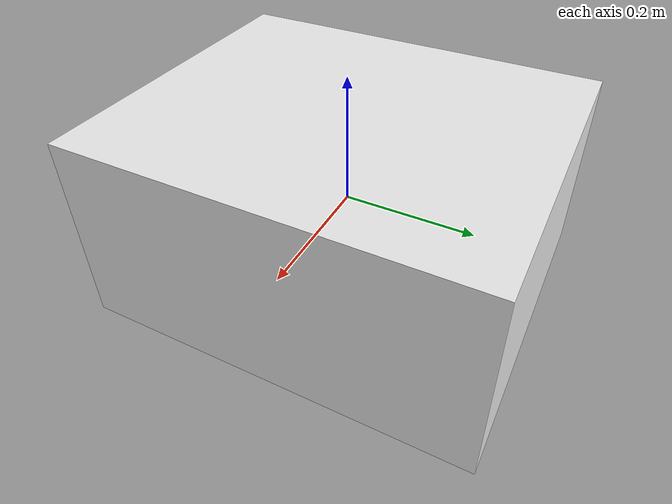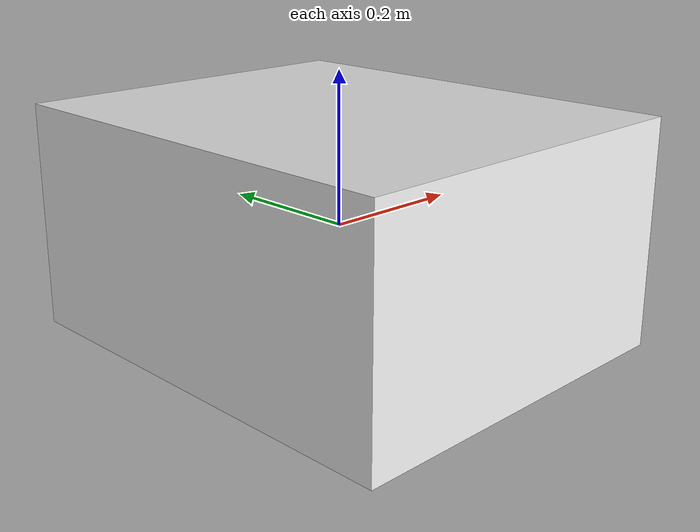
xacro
<?xml version="1.0"?>

<robot name="turtlebot" xmlns:xacro="http://ros.org/wiki/xacro">
  <xacro:include filename="$(find cepheus_description)/urdf/turtlebot.gazebo" />
  <xacro:include filename="$(find cepheus_description)/urdf/materials.xacro" />

  <!-- Define the base of the TurtleBot -->
  <link name="base_link">
    <visual>
      <origin xyz="0 0 0" rpy="0 0 0"/>
      <geometry>
        <box size="0.5 0.6 0.3"/>
      </geometry>
      <material name="white"/>
    </visual>
    <collision>
      <origin xyz="0 0 0" rpy="0 0 0"/>
      <geometry>
        <box size="0.5 0.6 0.3"/>
      </geometry>
    </collision>
  </link>

  <!-- Define a wheel -->
  <joint name="front_wheel_joint" type="continuous">
    <parent link="base_link"/>
    <child link="front_wheel_link"/>
    <origin xyz="0 0.1 0" rpy="0 0 0"/>
    <axis xyz="0 1 0"/>
  </joint>

  <link name="front_wheel_link">
    <visual>
      <origin xyz="0 0 0" rpy="0 0 0"/>
      <geometry>
        <cylinder radius="0.1" length="0.05"/>
      </geometry>
      <material name="grey"/>
    </visual>
    <collision>
      <origin xyz="0 0 0" rpy="0 0 0"/>
      <geometry>
        <cylinder radius="0.1" length="0.05"/>
      </geometry>
    </collision>
  </link>

  <!-- Gazebo reference -->
  <gazebo>
    <plugin name="gazebo_ros_control" filename="libgazebo_ros_control.so">
      <robotNamespace>/turtlebot</robotNamespace>
    </plugin>
  </gazebo>

</robot>
